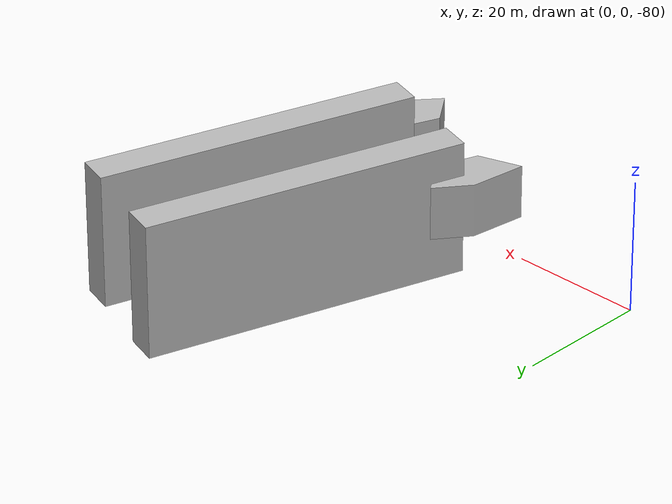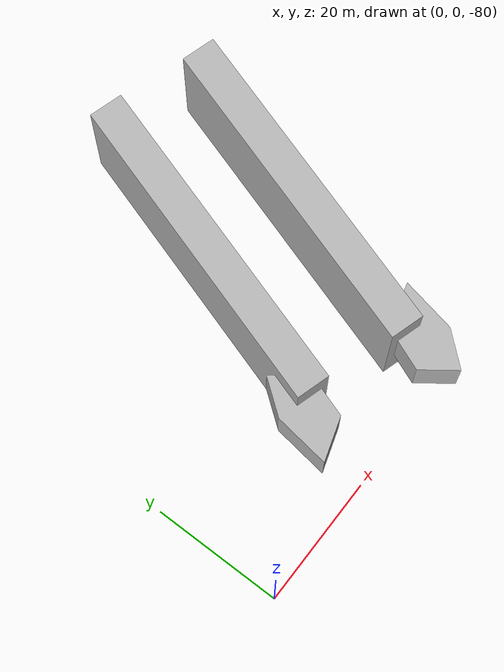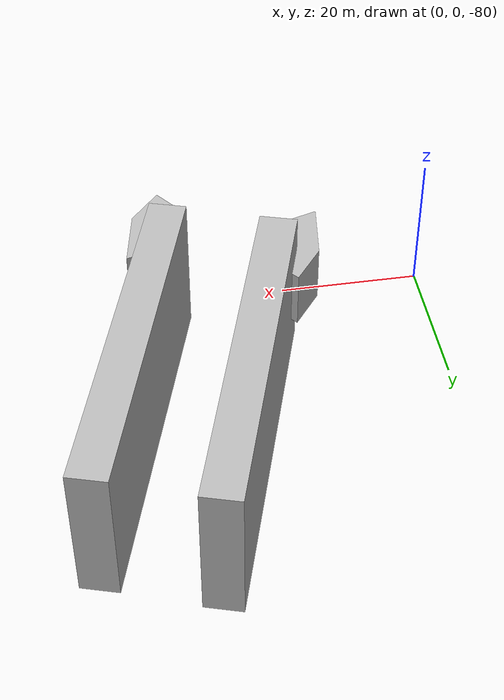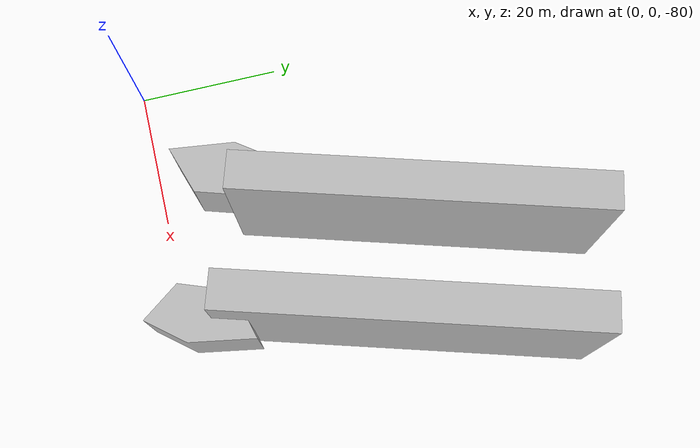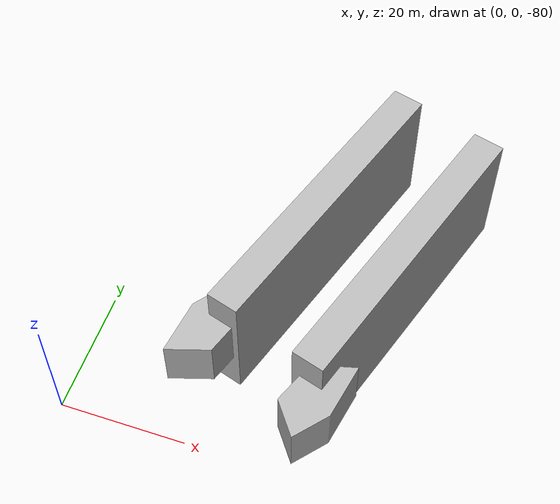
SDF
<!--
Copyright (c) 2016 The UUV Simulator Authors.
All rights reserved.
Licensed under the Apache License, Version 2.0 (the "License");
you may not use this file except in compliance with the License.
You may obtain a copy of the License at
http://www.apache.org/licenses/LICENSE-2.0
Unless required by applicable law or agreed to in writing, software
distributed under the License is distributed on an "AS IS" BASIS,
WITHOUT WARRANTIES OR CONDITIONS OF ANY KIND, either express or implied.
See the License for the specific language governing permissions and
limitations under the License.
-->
<sdf version="1.4">
 <world name="oceans_waves">
  <physics name="default_physics" default="true" type="ode">
   <max_step_size>0.002</max_step_size>
   <real_time_factor>1</real_time_factor>
   <real_time_update_rate>500</real_time_update_rate>
  </physics>
  <scene>
   <ambient>0.0 0.4 0.7 1.0</ambient>
   <sky><clouds><speed>12</speed></clouds></sky>
   <shadows>1</shadows>
   <fog>
    <color>0.1 0.2 0.3 1.0</color>
    <type>linear</type>
    <density>0.1</density>
    <start>50</start>
    <end>100</end>
   </fog>
  </scene>
  <spherical_coordinates>
   <latitude_deg>56.71897669633431</latitude_deg>
   <longitude_deg>3.515625</longitude_deg>
  </spherical_coordinates>
  <light type="directional" name="sun1">
   <pose>50 0 150 0 0 0</pose>
   <diffuse>1 1 1 1</diffuse>
   <specular>.1 .1 .1 1</specular>
   <direction>0.3 0.3 -1</direction>
   <cast_shadows>false</cast_shadows>
  </light>
  <light type="directional" name="sun_diffuse">
   <pose>-50 0 -150 0 0 0</pose>
   <diffuse>0.6 0.6 0.6 1</diffuse>
   <specular>0 0 0 1</specular>
   <direction>-0.3 -0.3 -1</direction>
   <cast_shadows>false</cast_shadows>
  </light>
  <include>
   <uri>model://obstacles/CubeSoft_1</uri>
   <name>cube_1</name>
   <pose>21 12 -70 0.18 1.57079633 1.35</pose>
   <static>true</static>
  </include>
  <include>
   <uri>model://obstacles/CubeSoft_1</uri>
   <name>cube_2</name>
   <pose>38 3 -70 -1.3 1.57079633 2.96</pose>
   <static>true</static>
  </include>
  <include>
   <uri>model://obstacles/CubeSoft_10</uri>
   <name>cube_10_1</name>
   <pose>37 57 -67 0.3 1.57079633 0</pose>
   <static>true</static>
  </include>
  <include>
   <uri>model://obstacles/CubeSoft_10</uri>
   <name>cube_10_2</name>
   <pose>51 52 -67  0.3 1.57079633 0</pose>
   <static>true</static>
  </include>
  <plugin name="underwater_current_plugin" filename="libuuv_underwater_current_ros_plugin.so">
   <namespace>hydrodynamics</namespace>
   <constant_current>
    <topic>current_velocity</topic>
    <velocity><mean>0</mean><min>0</min><max>5</max><mu>0.0</mu><noiseAmp>0.0</noiseAmp></velocity>
    <horizontal_angle>
     <mean>0</mean>
     <min>-3.141592653589793238</min>
     <max>3.141592653589793238</max>
     <mu>0.0</mu>
     <noiseAmp>0.0</noiseAmp>
    </horizontal_angle>
    <vertical_angle>
     <mean>0</mean>
     <min>-3.141592653589793238</min>
     <max>3.141592653589793238</max>
     <mu>0.0</mu>
     <noiseAmp>0.0</noiseAmp>
    </vertical_angle>
   </constant_current>
  </plugin>
  <plugin name="sc_interface" filename="libuuv_sc_ros_interface_plugin.so"/>
 </world>
</sdf>

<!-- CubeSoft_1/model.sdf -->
<sdf version="1.6">
    <model name="CubeSoft">
        <static>true</static>
        <link name="link">
            <pose>0 0 0 1.57 3.14159 0</pose>
            <collision name="collision">
                <geometry>
                    <mesh>
                        <uri>meshes/1.stl</uri>
                        <scale>0.001 0.001 0.001</scale>
                    </mesh>
                </geometry>
            </collision>
            <visual name="visual">
                <geometry>
                    <mesh>
                        <uri>meshes/1.stl</uri>
                        <scale>0.001 0.001 0.001</scale>
                    </mesh>
                </geometry>
            </visual>
        </link>
    </model>
</sdf>

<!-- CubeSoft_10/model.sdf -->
<sdf version="1.6">
    <model name="CubeSoft">
        <static>true</static>
        <link name="link">
            <pose>0 0 0 1.57 3.14159 0</pose>
            <collision name="collision">
                <geometry>
                    <mesh>
                        <uri>meshes/Cuboid_5x5x8.stl</uri>
                        <scale>0.004 0.001 0.006</scale>
                    </mesh>
                </geometry>
            </collision>
            <visual name="visual">
                <geometry>
                    <mesh>
                        <uri>meshes/Cuboid_5x5x8.stl</uri>
                        <scale>0.004 0.001 0.006</scale>
                    </mesh>
                </geometry>
            </visual>
        </link>
    </model>
</sdf>
